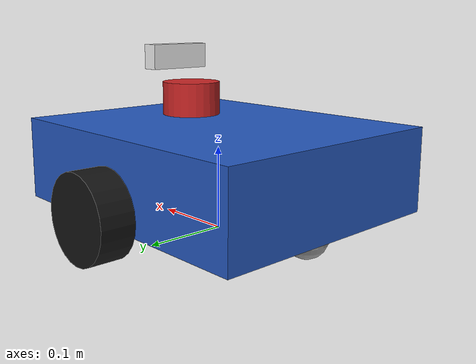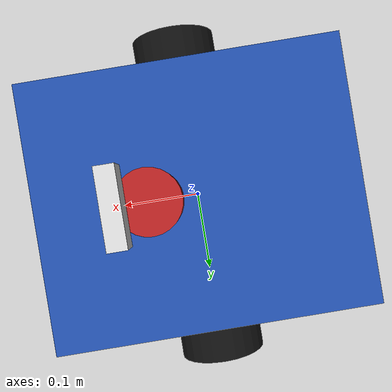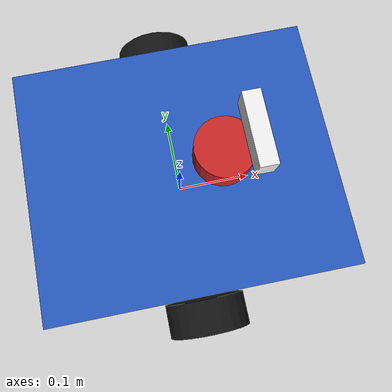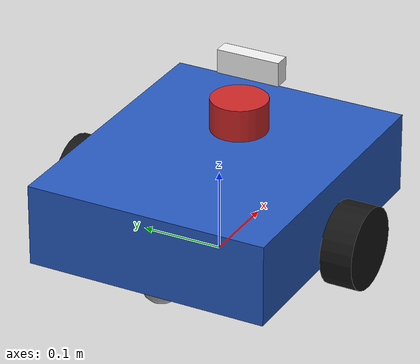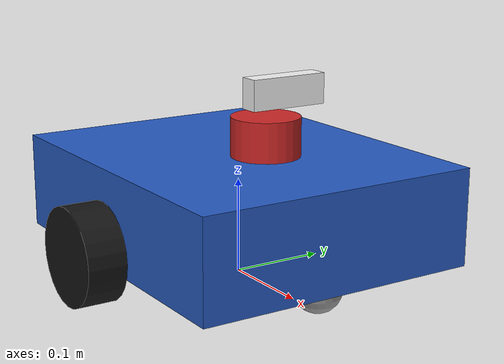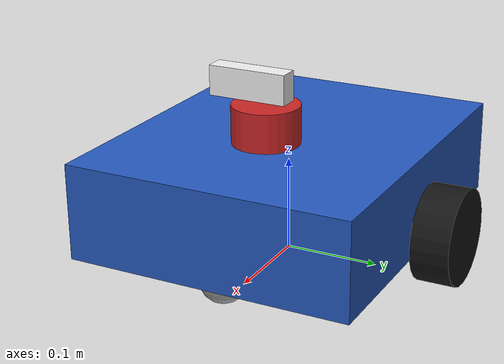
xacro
<?xml version="1.0"?>
<robot name="my_bot" xmlns:xacro="http://www.ros.org/wiki/xacro">

  <xacro:arg name="drive" default="gz_plugin"/>
  <xacro:arg name="use_camera" default="false"/>
  <xacro:arg name="lidar_noise" default="0.01"/>
  <xacro:arg name="sim_mode" default="gazebo"/>

  <xacro:include filename="$(find my_bot_description)/urdf/inc/properties.xacro"/>
  <xacro:include filename="$(find my_bot_description)/urdf/inc/inertial_macros.xacro"/>
  <xacro:include filename="$(find my_bot_description)/urdf/inc/materials.xacro"/>
  <xacro:include filename="$(find my_bot_description)/urdf/inc/base.xacro"/>
  <xacro:include filename="$(find my_bot_description)/urdf/inc/sensors/lidar.xacro"/>
  <xacro:include filename="$(find my_bot_description)/urdf/inc/sensors/imu.xacro"/>
  <xacro:include filename="$(find my_bot_description)/urdf/inc/sensors/camera.xacro"/>
  <xacro:include filename="$(find my_bot_description)/urdf/inc/drive_gz_plugin.xacro"/>
  <xacro:include filename="$(find my_bot_description)/urdf/inc/drive_ros2_control.xacro"/>
  <xacro:include filename="$(find my_bot_description)/urdf/inc/ground_truth.xacro"/>

  <!-- Sensors (the links always exist so the TF tree is identical in every mode) -->
  <xacro:lidar_sensor noise_stddev="$(arg lidar_noise)"/>
  <xacro:imu_sensor/>
  <xacro:camera_sensor enable_sim="$(arg use_camera)"/>

  <!-- Gazebo-only parts: how the wheels are driven + the ground-truth publisher -->
  <xacro:if value="${'$(arg sim_mode)' == 'gazebo'}">
    <xacro:if value="${'$(arg drive)' == 'gz_plugin'}">
      <xacro:drive_gz_plugin/>
    </xacro:if>
    <xacro:if value="${'$(arg drive)' == 'ros2_control'}">
      <xacro:drive_ros2_control/>
    </xacro:if>
    <xacro:ground_truth/>
  </xacro:if>

</robot>

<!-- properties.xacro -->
<robot xmlns:xacro="http://www.ros.org/wiki/xacro">

  <!-- ===================== Chassis (the main box) ===================== -->
  <xacro:property name="chassis_length" value="0.36"/>   <!-- along x -->
  <xacro:property name="chassis_width"  value="0.30"/>   <!-- along y -->
  <xacro:property name="chassis_height" value="0.10"/>   <!-- along z -->
  <xacro:property name="chassis_mass"   value="3.0"/>
  <!-- base_link sits at wheel-axle height. The chassis box centre is this much above it: -->
  <xacro:property name="chassis_z_offset" value="0.03"/>

  <!-- ===================== Driven wheels ===================== -->
  <xacro:property name="wheel_radius" value="0.05"/>
  <xacro:property name="wheel_width"  value="0.04"/>
  <xacro:property name="wheel_mass"   value="0.3"/>
  <!-- Distance between the CENTRES of the two wheels (left-right). -->
  <xacro:property name="wheel_separation" value="0.35"/>

  <!-- ===================== Casters (free-spinning balls) ===================== -->
  <!-- Slightly smaller than wheel_radius/2 so the driven wheels carry the weight
       (if the casters touch the floor too hard the wheels slip and odometry drifts). -->
  <xacro:property name="caster_radius" value="0.0245"/>
  <xacro:property name="caster_mass"   value="0.05"/>
  <xacro:property name="caster_x_offset" value="0.14"/>   <!-- front caster at +x, rear at -x -->

  <!-- ===================== LiDAR ===================== -->
  <xacro:property name="lidar_x" value="0.05"/>            <!-- 5 cm forward of base_link -->
  <xacro:property name="lidar_z" value="0.105"/>           <!-- scan plane 15.5 cm above the floor -->
  <xacro:property name="lidar_radius" value="0.035"/>
  <xacro:property name="lidar_length" value="0.04"/>
  <xacro:property name="lidar_mass" value="0.2"/>
  <xacro:property name="lidar_min_range" value="0.12"/>
  <xacro:property name="lidar_max_range" value="12.0"/>
  <xacro:property name="lidar_samples" value="360"/>      <!-- 1 ray per degree -->
  <xacro:property name="lidar_rate" value="10"/>          <!-- Hz -->

  <!-- ===================== Camera (mounted ON the LiDAR: base -> lidar -> camera) ===================== -->
  <xacro:property name="camera_x" value="0.03"/>
  <xacro:property name="camera_z" value="0.05"/>

  <!-- ===================== Motion limits (used by the drive plugins) ===================== -->
  <xacro:property name="max_linear_velocity"  value="0.6"/>
  <xacro:property name="max_angular_velocity" value="2.5"/>   <!-- rad/s -->
  <xacro:property name="max_linear_acceleration"  value="1.5"/>
  <xacro:property name="max_angular_acceleration" value="4.0"/>

  <!-- Handy constant -->
  <xacro:property name="PI" value="3.14159265359"/>
</robot>

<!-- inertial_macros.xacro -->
<robot xmlns:xacro="http://www.ros.org/wiki/xacro">

  <xacro:macro name="inertial_box" params="mass x y z *origin">
    <inertial>
      <xacro:insert_block name="origin"/>
      <mass value="${mass}"/>
      <inertia ixx="${(1/12) * mass * (y*y + z*z)}" ixy="0.0" ixz="0.0"
               iyy="${(1/12) * mass * (x*x + z*z)}" iyz="0.0"
               izz="${(1/12) * mass * (x*x + y*y)}"/>
    </inertial>
  </xacro:macro>

  <xacro:macro name="inertial_cylinder" params="mass length radius *origin">
    <inertial>
      <xacro:insert_block name="origin"/>
      <mass value="${mass}"/>
      <inertia ixx="${(1/12) * mass * (3*radius*radius + length*length)}" ixy="0.0" ixz="0.0"
               iyy="${(1/12) * mass * (3*radius*radius + length*length)}" iyz="0.0"
               izz="${(1/2) * mass * (radius*radius)}"/>
    </inertial>
  </xacro:macro>

  <xacro:macro name="inertial_sphere" params="mass radius *origin">
    <inertial>
      <xacro:insert_block name="origin"/>
      <mass value="${mass}"/>
      <inertia ixx="${(2/5) * mass * (radius*radius)}" ixy="0.0" ixz="0.0"
               iyy="${(2/5) * mass * (radius*radius)}" iyz="0.0"
               izz="${(2/5) * mass * (radius*radius)}"/>
    </inertial>
  </xacro:macro>

</robot>

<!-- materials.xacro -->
<robot xmlns:xacro="http://www.ros.org/wiki/xacro">
  <material name="body_blue"><color rgba="0.15 0.35 0.75 1.0"/></material>
  <material name="wheel_black"><color rgba="0.08 0.08 0.08 1.0"/></material>
  <material name="caster_grey"><color rgba="0.6 0.6 0.6 1.0"/></material>
  <material name="lidar_red"><color rgba="0.8 0.15 0.15 1.0"/></material>
  <material name="camera_white"><color rgba="0.95 0.95 0.95 1.0"/></material>
</robot>

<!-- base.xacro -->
<robot xmlns:xacro="http://www.ros.org/wiki/xacro">

  <!-- ===================== base_footprint (root of the robot tree) ===================== -->
  <link name="base_footprint"/>

  <joint name="base_joint" type="fixed">
    <parent link="base_footprint"/>
    <child link="base_link"/>
    <!-- base_link is lifted by the wheel radius so the wheels touch z=0 -->
    <origin xyz="0 0 ${wheel_radius}" rpy="0 0 0"/>
  </joint>

  <!-- base_link carries no geometry itself; the chassis is a separate child link
       so that we can move the box around without moving the robot's reference frame. -->
  <link name="base_link"/>

  <!-- ===================== Chassis ===================== -->
  <joint name="chassis_joint" type="fixed">
    <parent link="base_link"/>
    <child link="chassis_link"/>
    <origin xyz="0 0 ${chassis_z_offset}" rpy="0 0 0"/>
  </joint>

  <link name="chassis_link">
    <visual>
      <origin xyz="0 0 0" rpy="0 0 0"/>
      <geometry><box size="${chassis_length} ${chassis_width} ${chassis_height}"/></geometry>
      <material name="body_blue"/>
    </visual>
    <collision>
      <origin xyz="0 0 0" rpy="0 0 0"/>
      <geometry><box size="${chassis_length} ${chassis_width} ${chassis_height}"/></geometry>
    </collision>
    <xacro:inertial_box mass="${chassis_mass}" x="${chassis_length}" y="${chassis_width}" z="${chassis_height}">
      <origin xyz="0 0 0" rpy="0 0 0"/>
    </xacro:inertial_box>
  </link>

  <!-- ===================== Driven wheels (a macro so left/right stay identical) ===================== -->
  <xacro:macro name="drive_wheel" params="prefix y_reflect">
    <joint name="${prefix}_wheel_joint" type="continuous">
      <parent link="base_link"/>
      <child link="${prefix}_wheel_link"/>
      <origin xyz="0 ${y_reflect * wheel_separation / 2} 0" rpy="${-y_reflect * PI / 2} 0 0"/>
      <axis xyz="0 0 ${y_reflect}"/>
    </joint>

    <link name="${prefix}_wheel_link">
      <visual>
        <geometry><cylinder radius="${wheel_radius}" length="${wheel_width}"/></geometry>
        <material name="wheel_black"/>
      </visual>
      <collision>
        <geometry><cylinder radius="${wheel_radius}" length="${wheel_width}"/></geometry>
      </collision>
      <xacro:inertial_cylinder mass="${wheel_mass}" length="${wheel_width}" radius="${wheel_radius}">
        <origin xyz="0 0 0" rpy="0 0 0"/>
      </xacro:inertial_cylinder>
    </link>

    <!-- Rubber-like friction so the wheels grip (Gazebo reads mu1/mu2 from these tags). -->
    <gazebo reference="${prefix}_wheel_link">
      <mu1>1.0</mu1>
      <mu2>1.0</mu2>
    </gazebo>
  </xacro:macro>

  <xacro:drive_wheel prefix="left"  y_reflect="1"/>
  <xacro:drive_wheel prefix="right" y_reflect="-1"/>

  <!-- ===================== Casters (passive balls, almost no friction) ===================== -->
  <xacro:macro name="caster" params="prefix x_reflect">
    <joint name="caster_${prefix}_joint" type="fixed">
      <parent link="base_link"/>
      <child link="caster_${prefix}_link"/>
      <!-- centre of the ball sits caster_radius above the floor -->
      <origin xyz="${x_reflect * caster_x_offset} 0 ${caster_radius - wheel_radius}" rpy="0 0 0"/>
    </joint>

    <link name="caster_${prefix}_link">
      <visual>
        <geometry><sphere radius="${caster_radius}"/></geometry>
        <material name="caster_grey"/>
      </visual>
      <collision>
        <geometry><sphere radius="${caster_radius}"/></geometry>
      </collision>
      <xacro:inertial_sphere mass="${caster_mass}" radius="${caster_radius}">
        <origin xyz="0 0 0" rpy="0 0 0"/>
      </xacro:inertial_sphere>
    </link>

    <!-- Near-zero friction: a caster must slide/roll freely in every direction,
         otherwise it fights the wheels when the robot turns. -->
    <gazebo reference="caster_${prefix}_link">
      <mu1>0.001</mu1>
      <mu2>0.001</mu2>
    </gazebo>
  </xacro:macro>

  <xacro:caster prefix="front" x_reflect="1"/>
  <xacro:caster prefix="rear"  x_reflect="-1"/>

</robot>

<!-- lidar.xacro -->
<robot xmlns:xacro="http://www.ros.org/wiki/xacro">

  <xacro:macro name="lidar_sensor" params="noise_stddev:=0.01">

    <joint name="lidar_joint" type="fixed">
      <parent link="base_link"/>
      <child link="lidar_link"/>
      <origin xyz="${lidar_x} 0 ${lidar_z}" rpy="0 0 0"/>
    </joint>

    <link name="lidar_link">
      <visual>
        <geometry><cylinder radius="${lidar_radius}" length="${lidar_length}"/></geometry>
        <material name="lidar_red"/>
      </visual>
      <collision>
        <geometry><cylinder radius="${lidar_radius}" length="${lidar_length}"/></geometry>
      </collision>
      <xacro:inertial_cylinder mass="${lidar_mass}" length="${lidar_length}" radius="${lidar_radius}">
        <origin xyz="0 0 0" rpy="0 0 0"/>
      </xacro:inertial_cylinder>
    </link>

    <gazebo reference="lidar_link">
      <!-- gpu_lidar = ray-casting done by the rendering engine (ogre2).
           On a VM without a GPU, export LIBGL_ALWAYS_SOFTWARE=1 (see README) or use sim:=lite. -->
      <sensor name="lidar" type="gpu_lidar">
        <pose>0 0 0 0 0 0</pose>
        <always_on>true</always_on>
        <visualize>true</visualize>
        <update_rate>${lidar_rate}</update_rate>
        <topic>scan</topic>
        <gz_frame_id>lidar_link</gz_frame_id>
        <lidar>
          <scan>
            <horizontal>
              <samples>${lidar_samples}</samples>
              <resolution>1</resolution>
              <!-- -180deg .. +179deg : 360 rays, 1 deg apart, no duplicated ray at +-180 -->
              <min_angle>${-PI}</min_angle>
              <max_angle>${PI - 2*PI/lidar_samples}</max_angle>
            </horizontal>
          </scan>
          <range>
            <min>${lidar_min_range}</min>
            <max>${lidar_max_range}</max>
            <resolution>0.01</resolution>
          </range>
          <!-- Real LiDARs are noisy (~1 cm). Noise makes SLAM/AMCL tuning realistic. -->
          <noise>
            <type>gaussian</type>
            <mean>0.0</mean>
            <stddev>${noise_stddev}</stddev>
          </noise>
        </lidar>
      </sensor>
    </gazebo>

  </xacro:macro>
</robot>

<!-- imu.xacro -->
<robot xmlns:xacro="http://www.ros.org/wiki/xacro">

  <xacro:macro name="imu_sensor">

    <joint name="imu_joint" type="fixed">
      <parent link="base_link"/>
      <child link="imu_link"/>
      <origin xyz="0 0 0.02" rpy="0 0 0"/>
    </joint>

    <link name="imu_link">
      <visual>
        <geometry><box size="0.03 0.03 0.01"/></geometry>
        <material name="caster_grey"/>
      </visual>
      <xacro:inertial_box mass="0.01" x="0.03" y="0.03" z="0.01">
        <origin xyz="0 0 0" rpy="0 0 0"/>
      </xacro:inertial_box>
    </link>

    <gazebo reference="imu_link">
      <sensor name="imu" type="imu">
        <always_on>true</always_on>
        <update_rate>50</update_rate>
        <topic>imu</topic>
        <gz_frame_id>imu_link</gz_frame_id>
        <imu>
          <!-- Noise values taken from the Nav2 "Setting Up Odometry - Gazebo" guide -->
          <angular_velocity>
            <x><noise type="gaussian"><mean>0.0</mean><stddev>2e-4</stddev></noise></x>
            <y><noise type="gaussian"><mean>0.0</mean><stddev>2e-4</stddev></noise></y>
            <z><noise type="gaussian"><mean>0.0</mean><stddev>2e-4</stddev></noise></z>
          </angular_velocity>
          <linear_acceleration>
            <x><noise type="gaussian"><mean>0.0</mean><stddev>1.7e-2</stddev></noise></x>
            <y><noise type="gaussian"><mean>0.0</mean><stddev>1.7e-2</stddev></noise></y>
            <z><noise type="gaussian"><mean>0.0</mean><stddev>1.7e-2</stddev></noise></z>
          </linear_acceleration>
        </imu>
      </sensor>
    </gazebo>

  </xacro:macro>
</robot>

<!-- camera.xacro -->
<robot xmlns:xacro="http://www.ros.org/wiki/xacro">

  <xacro:macro name="camera_sensor" params="enable_sim:=false">

    <joint name="camera_joint" type="fixed">
      <parent link="lidar_link"/>
      <child link="camera_link"/>
      <origin xyz="${camera_x} 0 ${camera_z}" rpy="0 0 0"/>
    </joint>

    <link name="camera_link">
      <visual>
        <geometry><box size="0.02 0.08 0.03"/></geometry>
        <material name="camera_white"/>
      </visual>
      <collision>
        <geometry><box size="0.02 0.08 0.03"/></geometry>
      </collision>
      <xacro:inertial_box mass="0.05" x="0.02" y="0.08" z="0.03">
        <origin xyz="0 0 0" rpy="0 0 0"/>
      </xacro:inertial_box>
    </link>

    <!-- Optical frame: rotate so z looks forward, x right, y down. -->
    <joint name="camera_optical_joint" type="fixed">
      <parent link="camera_link"/>
      <child link="camera_optical_link"/>
      <origin xyz="0 0 0" rpy="${-PI/2} 0 ${-PI/2}"/>
    </joint>
    <link name="camera_optical_link"/>

    <xacro:if value="${enable_sim}">
      <gazebo reference="camera_link">
        <!-- Gazebo cameras look along the +x axis of the link they belong to (camera_link). -->
        <sensor name="camera" type="camera">
          <always_on>true</always_on>
          <visualize>true</visualize>
          <update_rate>15</update_rate>
          <topic>camera/image_raw</topic>
          <gz_frame_id>camera_optical_link</gz_frame_id>
          <camera>
            <camera_info_topic>camera/camera_info</camera_info_topic>
            <horizontal_fov>1.2</horizontal_fov>
            <image>
              <width>640</width>
              <height>480</height>
              <format>R8G8B8</format>
            </image>
            <clip>
              <near>0.05</near>
              <far>15.0</far>
            </clip>
          </camera>
        </sensor>
      </gazebo>
    </xacro:if>

  </xacro:macro>
</robot>
